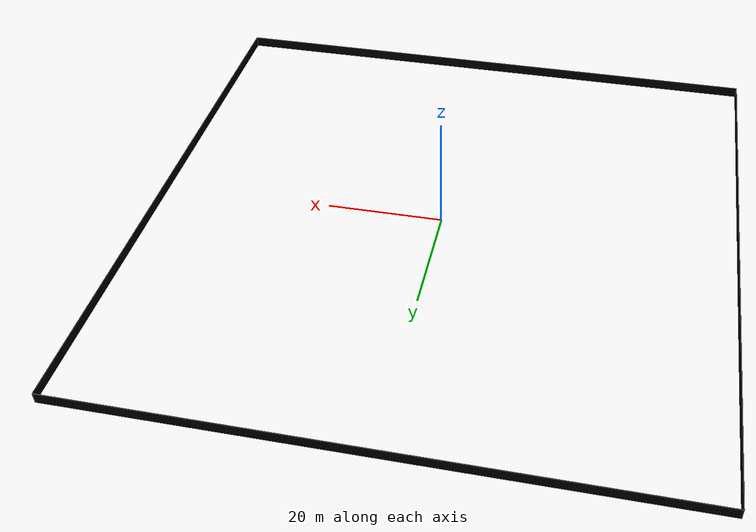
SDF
<?xml version='1.0'?>
<sdf version='1.6'>
	<model name='boundary1'>
		<static>1</static>
		<pose>0 0 0 0 0 0</pose>
		<link name='link'>
			<collision name='collision1'>
				<pose>-50.05 0 0.0 0 0 0</pose>
				<geometry>
					<box>
						<size>0.1 100.1 1.919</size>
					</box>
				</geometry>
			</collision>

			<visual name='visual1'>
				<pose>-50.05 0 0.0 0 0 0</pose>
				<geometry>
					<box>
						<size>0.1 100.1 1.919</size>
					</box>
				</geometry>
				<material>
					<ambient>0.6 0.6 0.6 01</ambient>
					<diffuse>0 0 0 01</diffuse>
					<specular>0 0 0 0</specular>
					<emissive>0 0 0 0</emissive>
				</material>
				<transparency>0</transparency>
			</visual>

			<collision name='collision2'>
				<pose>50.05 0 0.0 0 0 0</pose>
				<geometry>
					<box>
						<size>0.1 100.1 1.919</size>
					</box>
				</geometry>
			</collision>

			<visual name='visual2'>
				<pose>50.05 0 0.0 0 0 0</pose>
				<geometry>
					<box>
						<size>0.1 100.1 1.919</size>
					</box>
				</geometry>
				<material>
					<ambient>0.6 0.6 0.6 01</ambient>
					<diffuse>0 0 0 01</diffuse>
					<specular>0 0 0 0</specular>
					<emissive>0 0 0 0</emissive>
				</material>
				<transparency>0</transparency>
			</visual>

			<collision name='collision3'>
				<pose>0 -50 0.0 0 0 0</pose>
				<geometry>
					<box>
						<size>100 0.1 1.919</size>
					</box>
				</geometry>
			</collision>

			<visual name='visual3'>
				<pose>0 -50 0.0 0 0 0</pose>
				<geometry>
					<box>
						<size>100 0.1 1.919</size>
					</box>
				</geometry>
				<material>
					<ambient>0.6 0.6 0.6 01</ambient>
					<diffuse>0 0 0 01</diffuse>
					<specular>0 0 0 0</specular>
					<emissive>0 0 0 0</emissive>
				</material>
				<transparency>0</transparency>
			</visual>

			<collision name='collision4'>
				<pose>0 50 0.0 0 0 0</pose>
				<geometry>
					<box>
						<size>100 0.1 1.919</size>
					</box>
				</geometry>

			</collision>

			<visual name='visual4'>
				<pose>0 50 0.0 0 0 0</pose>
				<geometry>
					<box>
						<size>100 0.1 1.919</size>
					</box>
				</geometry>
				<material>
					<ambient>0.6 0.6 0.6 01</ambient>
					<diffuse>0 0 0 01</diffuse>
					<specular>0 0 0 0</specular>
					<emissive>0 0 0 0</emissive>
				</material>
				<transparency>0</transparency>
			</visual>
		</link>
	</model>
</sdf>
